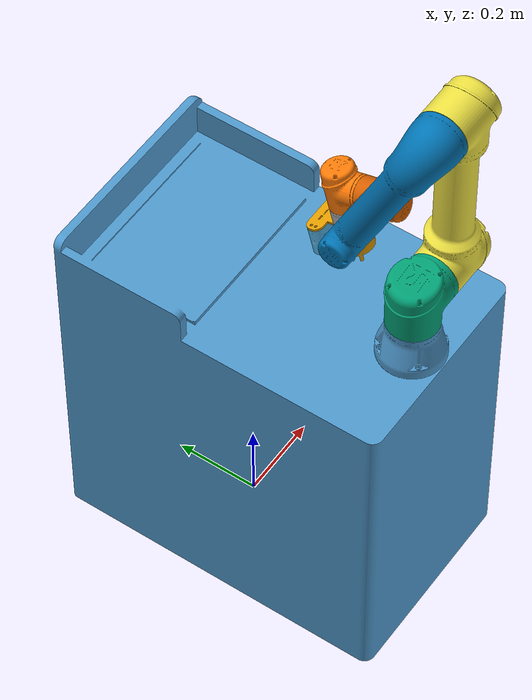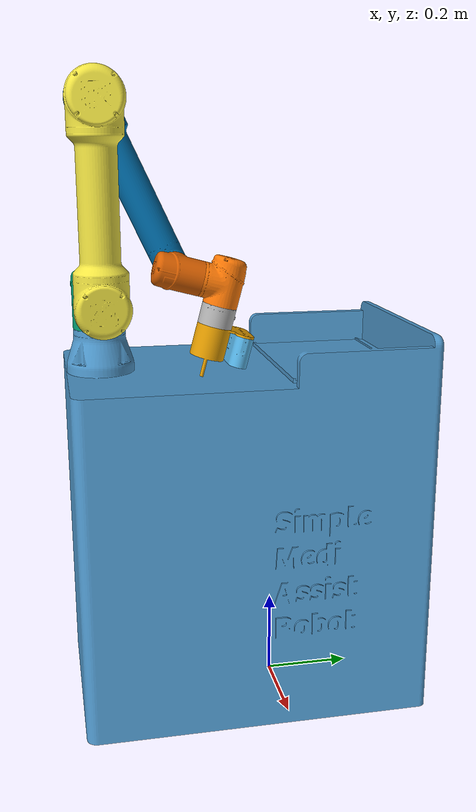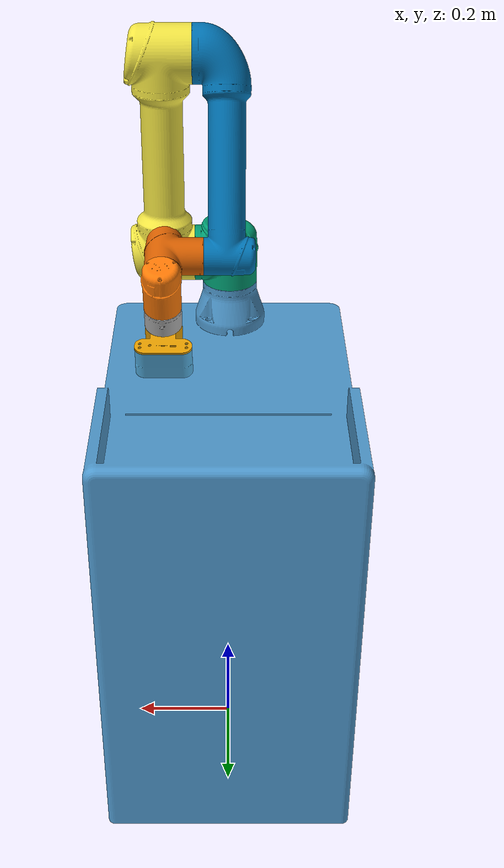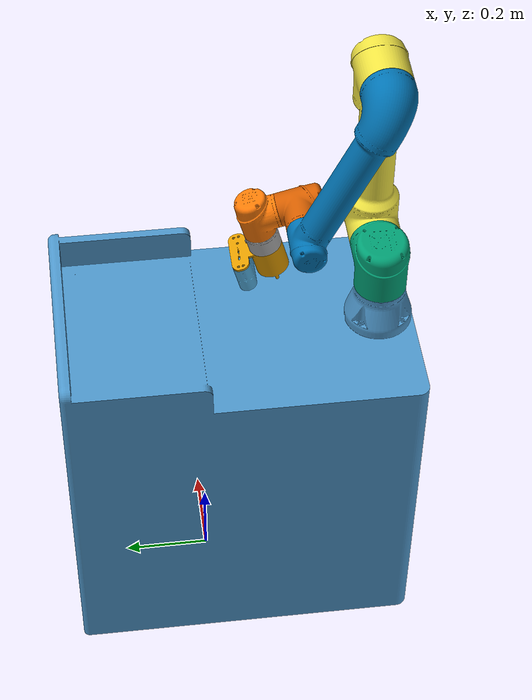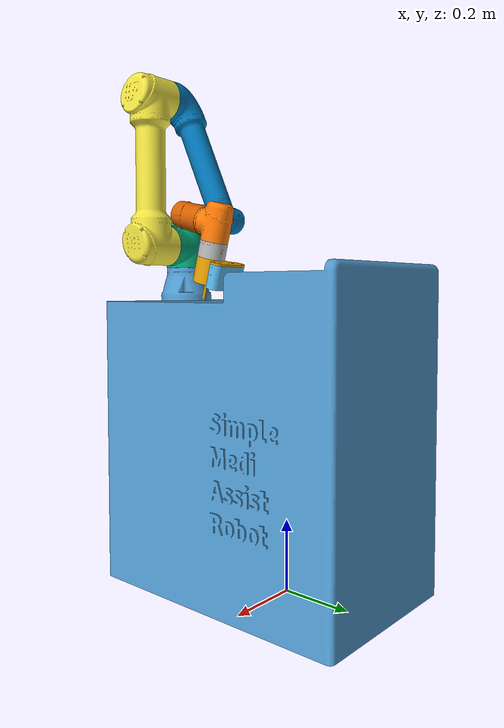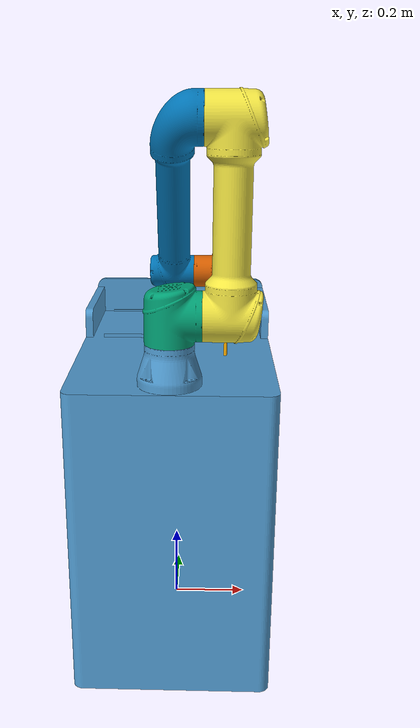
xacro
<?xml version="1.0" ?>
<robot name="Model" xmlns:xacro="http://www.ros.org/wiki/xacro">

    <!-- ROS2_CONTROL PLUGINS -->
    <xacro:include filename="$(find ros2_description)/urdf/medi_assist_ros2_control.xacro"/>

    <!-- GAZEBO PARAMETERS -->
    <xacro:include filename="$(find ros2_description)/urdf/medi_assist_gazebo.xacro"/>

    <!-- ORBBEC CAMERA -->
    <xacro:include filename="$(find ros2_description)/urdf/orbec_camera.xacro"/>

    <link name="world"/>

    <link name="base_link">
        <inertial>
            <origin xyz="0.000916956687752491 -0.050561592021439956 0.5087695926933472" rpy="0 0 0"/>
            <mass value="215.72763086032728"/>
            <inertia ixx="34.178607" iyy="24.090705" izz="26.782131" ixy="-0.026992" iyz="-1.458572" ixz="0.035376"/>
        </inertial>
        <visual>
            <origin xyz="0 0 0" rpy="0 0 0"/>
            <geometry>
            <mesh filename="package://ros2_description/meshes/dae/base_linkV02.dae" scale="1.00 1.00 1.00"/>
            </geometry>
        </visual>
        <collision>
            <origin xyz="0 0 0" rpy="0 0 0"/>
            <geometry>
            <mesh filename="package://ros2_description/meshes/dae/base_linkV02.dae" scale="1.00 1.00 1.00"/>
            </geometry>
        </collision>
    </link>

    <link name="link_1__1__1">
        <inertial>
            <origin xyz="0.010910577324770928 4.0304361822451895e-06 0.06351961757404367" rpy="0 0 0"/>
            <mass value="10.0"/>
            <inertia ixx="0.027067" iyy="0.030809" izz="0.026243" ixy="-1e-06" iyz="-1e-06" ixz="-0.000743"/>
        </inertial>
        <visual>
            <origin xyz="0.003488 0.397366 -0.899482" rpy="0 0 0"/>
            <geometry>
            <mesh filename="package://ros2_description/meshes/dae/link_1.dae" scale="1.00 1.00 1.00"/>
            </geometry>
        </visual>
        <collision>
            <origin xyz="0.003488 0.397366 -0.899482" rpy="0 0 0"/>
            <geometry>
            <mesh filename="package://ros2_description/meshes/link_1__1__1.stl" scale="0.001 0.001 0.001"/>
            </geometry>
        </collision>
    </link>

    <link name="link_2__1__1">
        <inertial>
            <origin xyz="0.06347845232751415 3.980476653286935e-07 0.21249987577443497" rpy="0 0 0"/>
            <mass value="10.0"/>
            <inertia ixx="1.176134" iyy="1.185267" izz="0.066964" ixy="-0.0" iyz="-1.7e-05" ixz="0.0"/>
        </inertial>
        <visual>
            <origin xyz="-0.070912 0.397366 -0.962882" rpy="0 0 0"/>
            <geometry>
            <mesh filename="package://ros2_description/meshes/dae/link_2.dae" scale="1.00 1.00 1.00"/>
            </geometry>
        </visual>
        <collision>
            <origin xyz="-0.070912 0.397366 -0.962882" rpy="0 0 0"/>
            <geometry>
            <mesh filename="package://ros2_description/meshes/link_2__1__1.stl" scale="0.001 0.001 0.001"/>
            </geometry>
        </collision>
    </link>

    <link name="link_3__1__1">
        <inertial>
            <origin xyz="-0.06111242517921518 0.07139429219659921 -0.1531003341406041" rpy="0 0 0"/>
            <mass value="10.0"/>
            <inertia ixx="0.480772" iyy="0.403523" izz="0.10852" ixy="0.013209" iyz="0.175801" ixz="-0.028324"/>
        </inertial>
        <visual>
            <origin xyz="-0.070912 0.397366 -1.387882" rpy="0 0 0"/>
            <geometry>
            <mesh filename="package://ros2_description/meshes/dae/link_3.dae" scale="1.00 1.00 1.00"/>
            </geometry>
        </visual>
        <collision>
            <origin xyz="-0.070912 0.397366 -1.387882" rpy="0 0 0"/>
            <geometry>
            <mesh filename="package://ros2_description/meshes/link_3__1__1.stl" scale="0.001 0.001 0.001"/>
            </geometry>
        </collision>
    </link>

    <link name="link_4__1__1">
        <inertial>
            <origin xyz="0.062077435162268935 -0.0025017891570296436 0.000662022917369498" rpy="0 0 0"/>
            <mass value="10.0"/>
            <inertia ixx="0.005384" iyy="0.007049" izz="0.00846" ixy="0.000197" iyz="0.000406" ixz="-5.1e-05"/>
        </inertial>
        <visual>
            <origin xyz="-0.049412 0.231615 -1.032428" rpy="0 0 0"/>
            <geometry>
            <mesh filename="package://ros2_description/meshes/link_4__1__1.stl" scale="0.001 0.001 0.001"/>
            </geometry>
        </visual>
        <collision>
            <origin xyz="-0.049412 0.231615 -1.032428" rpy="0 0 0"/>
            <geometry>
            <mesh filename="package://ros2_description/meshes/link_4__1__1.stl" scale="0.001 0.001 0.001"/>
            </geometry>
        </collision>
    </link>

    <link name="link_5__1__1">
        <inertial>
            <origin xyz="9.046212579633117e-06 0.04535613389087162 -0.008065062395423928" rpy="0 0 0"/>
            <mass value="10.0"/>
            <inertia ixx="0.005555" iyy="0.004691" izz="0.00398" ixy="-2e-06" iyz="-0.000303" ixz="-0.0"/>
        </inertial>
        <visual>
            <origin xyz="-0.129812 0.186892 -1.020445" rpy="0 0 0"/>
            <geometry>
            <mesh filename="package://ros2_description/meshes/dae/link_5.dae" scale="1.00 1.00 1.00"/>
            </geometry>
        </visual>
        <collision>
            <origin xyz="-0.129812 0.186892 -1.020445" rpy="0 0 0"/>
            <geometry>
            <mesh filename="package://ros2_description/meshes/link_5__1__1.stl" scale="0.001 0.001 0.001"/>
            </geometry>
        </collision>
    </link>

    <link name="link_6__1__1">
        <inertial>
            <origin xyz="-5.041750731349381e-07 -0.00657419089439229 -0.02453303103322979" rpy="0 0 0"/>
            <mass value="1.7476800981120002"/>
            <inertia ixx="0.000987" iyy="0.001001" izz="0.001198" ixy="0.0" iyz="5.6e-05" ixz="-0.0"/>
        </inertial>
        <visual>
            <origin xyz="-0.129812 0.14714 -0.962481" rpy="0 0 0"/>
            <geometry>
            <mesh filename="package://ros2_description/meshes/link_6__1__1.stl" scale="0.001 0.001 0.001"/>
            </geometry>
        </visual>
        <collision>
            <origin xyz="-0.129812 0.14714 -0.962481" rpy="0 0 0"/>
            <geometry>
            <mesh filename="package://ros2_description/meshes/link_6__1__1.stl" scale="0.001 0.001 0.001"/>
            </geometry>
        </collision>
    </link>

    // Camera plugin

    // Gripper
    <link name="gripper_1">
        <inertial>
            <origin xyz="-0.00023594377458402427 0.003909500932557736 -0.03742895397017321" rpy="0 0 0"/>
            <mass value="0.7631357559678082"/>
            <inertia ixx="0.001396" iyy="0.000886" izz="0.001443" ixy="1e-05" iyz="-0.000226" ixz="3e-06"/>
        </inertial>
        <visual>
            <origin xyz="-0.129812 0.158761 -0.919111" rpy="0 0 0"/>
            <geometry>
            <mesh filename="package://ros2_description/meshes/gripper_1.stl" scale="0.001 0.001 0.001"/>
            </geometry>
        </visual>
        <collision>
            <origin xyz="-0.129812 0.158761 -0.919111" rpy="0 0 0"/>
            <geometry>
            <mesh filename="package://ros2_description/meshes/gripper_1.stl" scale="0.001 0.001 0.001"/>
            </geometry>
        </collision>
    </link>

    <joint name="virtual_joint" type="fixed">
        <parent link="world"/>
        <child link="base_link"/>
        <origin xyz="0.0000 0.0000 0.0000" rpy="0.0000 0.0000 0.0000"/>
    </joint>

    <joint name="Revolute_1" type="revolute">
    <origin xyz="-0.003488 -0.397366 0.899482" rpy="0 0 0"/>
    <parent link="base_link"/>
    <child link="link_1__1__1"/>
    <axis xyz="0.0 -0.0 1.0"/>
    <limit upper="3.14159" lower="-3.14159" effort="100" velocity="100"/>
    </joint>

    <transmission name="transmission_Revolute_1">
        <plugin>transmission_interface/SimpleTransmission</plugin>
        <actuator name="motor_Revolute_1" role="actuator1"/>
        <joint name="Revolute_1"    role="joint1">
            <mechanical_reduction>1.0</mechanical_reduction>
        </joint>
    </transmission>

    <joint name="Revolute_2" type="revolute">
        <origin xyz="0.0744 0.0 0.0634" rpy="0 0 0"/>
        <parent link="link_1__1__1"/>
        <child link="link_2__1__1"/>
        <axis xyz="1.0 0.0 0.0"/>
        <limit upper="1.570796" lower="-1.570796" effort="100" velocity="100"/>
    </joint>

    <transmission name="transmission_Revolute_2">
        <plugin>transmission_interface/SimpleTransmission</plugin>
        <actuator name="motor_Revolute_2" role="actuator1"/>
        <joint name="Revolute_2"    role="joint1">
            <mechanical_reduction>1.0</mechanical_reduction>
        </joint>
    </transmission>

    <joint name="Revolute_3" type="revolute">
    <origin xyz="0.0 0.0 0.425" rpy="0 0 0"/>
    <parent link="link_2__1__1"/>
    <child link="link_3__1__1"/>
    <axis xyz="-1.0 0.0 -0.0"/>
    <limit upper="0.0" lower="-2.61799" effort="100" velocity="100"/>
    </joint>

    <transmission name="transmission_Revolute_3">
        <plugin>transmission_interface/SimpleTransmission</plugin>
        <actuator name="motor_Revolute_3" role="actuator1"/>
        <joint name="Revolute_3"    role="joint1">
            <mechanical_reduction>1.0</mechanical_reduction>
        </joint>
    </transmission>

    <joint name="Revolute_4" type="revolute">
    <origin xyz="-0.0215 0.165751 -0.355454" rpy="0 0 0"/>
    <parent link="link_3__1__1"/>
    <child link="link_4__1__1"/>
    <axis xyz="1.0 -0.0 0.0"/>
    <limit upper="3.14159" lower="-3.14159" effort="100" velocity="100"/>
    </joint>

    <transmission name="transmission_Revolute_4">
        <plugin>transmission_interface/SimpleTransmission</plugin>
        <actuator name="motor_Revolute_4" role="actuator1"/>
        <joint name="Revolute_4"    role="joint1">
            <mechanical_reduction>1.0</mechanical_reduction>
        </joint>
    </transmission>

    <joint name="Revolute_5" type="revolute">
    <origin xyz="0.0804 0.044723 -0.011983" rpy="0 0 0"/>
    <parent link="link_4__1__1"/>
    <child link="link_5__1__1"/>
    <axis xyz="0.0 0.965926 -0.258819"/>
    <limit upper="2.094" lower="-2.094" effort="100" velocity="100"/>
    </joint>

    <transmission name="transmission_Revolute_5">
        <plugin>transmission_interface/SimpleTransmission</plugin>
        <actuator name="motor_Revolute_5" role="actuator1"/>
        <joint name="Revolute_5"    role="joint1">
            <mechanical_reduction>1.0</mechanical_reduction>
        </joint>
    </transmission>

    <joint name="Revolute_6" type="revolute">
    <origin xyz="0.0 0.039752 -0.057964" rpy="0 0 0"/>
    <parent link="link_5__1__1"/>
    <child link="link_6__1__1"/>
    <axis xyz="0.0 -0.258819 -0.965926"/>
    <limit upper="3.14159" lower="-3.14159" effort="100" velocity="100"/>
    </joint>

    <transmission name="transmission_Revolute_6">
        <plugin>transmission_interface/SimpleTransmission</plugin>
        <actuator name="motor_Revolute_6" role="actuator1"/>
        <joint name="Revolute_6"    role="joint1">
            <mechanical_reduction>1.0</mechanical_reduction>
        </joint>
    </transmission>

    <xacro:femto_bolt prefix="femto"
                      parent="gripper_1"
                      use_nominal_extrinsics="true">
        <origin xyz="-0.047225 0.064435 -0.02248" rpy="0 0 0"/>
    </xacro:femto_bolt>

    <joint name="Rigid_8" type="fixed">
    <origin xyz="0.0 -0.011621 -0.04337" rpy="0 0 0"/>
    <parent link="link_6__1__1"/>
    <child link="gripper_1"/>
    </joint>
</robot>

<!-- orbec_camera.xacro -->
<robot  xmlns:xacro="http://wiki.ros.org/xacro">

    <!-- THIS SCRIPT IS FOR ORBBEC FEMTO BOLT SERIES-->
    <!-- Properties -->
    <xacro:property name="M_PI" value="3.1415926535897931" />
    <xacro:property name="mesh_path" value="package://ros2_description/meshes/" />

    <xacro:macro name="femto_bolt" params="prefix parent *origin use_nominal_extrinsics:=true">
        <!-- camera with origin at bottom screw mount -->
        <joint name="${prefix}_joint" type="fixed">
            <xacro:insert_block name="origin" />
            <parent link="${parent}"/>
            <child link="${prefix}_base_link" />
        </joint>

        <link name="${prefix}_base_link" >
            <inertial>
                <origin xyz="0.04601629355688741 -0.014344652062882102 -0.031542332436236165" rpy="0 0 0"/>
                <mass value="1.843152955030244"/>
                <inertia ixx="0.00078" iyy="0.00233" izz="0.002059" ixy="0.0" iyz="-7.6e-05" ixz="-0.0"/>
            </inertial>
            <visual>
                <origin xyz="-0.082587 0.094326 -0.896631" rpy="0 0 0"/>
                <geometry>
                <mesh filename="${mesh_path}Femto_bolt_v1_1.stl" scale="0.001 0.001 0.001"/>
                </geometry>
            </visual>
            <collision>
                <origin xyz="-0.082587 0.094326 -0.896631" rpy="0 0 0"/>
                <geometry>
                <mesh filename="${mesh_path}Femto_bolt_v1_1.stl" scale="0.001 0.001 0.001"/>
                </geometry>
            </collision>
        </link>

        <link name="${prefix}_link"/>

        <joint name="${prefix}_depth_joint" type="fixed">
            <origin xyz="0.044 -0.022802 -0.061338" rpy="0.0 1.83259571 1.57079633" />
            <parent link="${prefix}_base_link" />
            <child link="${prefix}_link" />
        </joint>

        <joint name="${prefix}_optical_joint" type="fixed">
            <origin xyz="0.0 0.0 0.0" rpy="${-M_PI/2} 0.0 ${-M_PI/2}" />
            <parent link="${prefix}_link" />
            <child link="${prefix}_link_optical" />
        </joint>

        <link name="${prefix}_link_optical"/>

        <!-- GAZEBO REFERENCE TAG -->
        <gazebo reference="${prefix}_link">
            <material>Gazebo/Red</material>
            <sensor name="${prefix}" type="depth">
                <pose> 0 0 0 0 0 0 </pose>
                <visualize>true</visualize>
                <update_rate>30</update_rate>
                <camera>
                    <horizontal_fov>2.0943951</horizontal_fov>
                    <image>
                        <format>B8G8R8</format>
                        <width>512</width>
                        <height>512</height>
                    </image>
                    <clip>
                        <near>0.25</near>
                        <far>2.21</far>
                    </clip>
                </camera>
                <plugin name="${prefix}_link_controller" filename="libgazebo_ros_camera.so">
                    <frame_name>${prefix}_link_optical</frame_name>
                    <min_depth>0.25</min_depth>
                    <max_depth>2.21</max_depth>
                </plugin>
            </sensor>
        </gazebo>
    </xacro:macro>
</robot>
